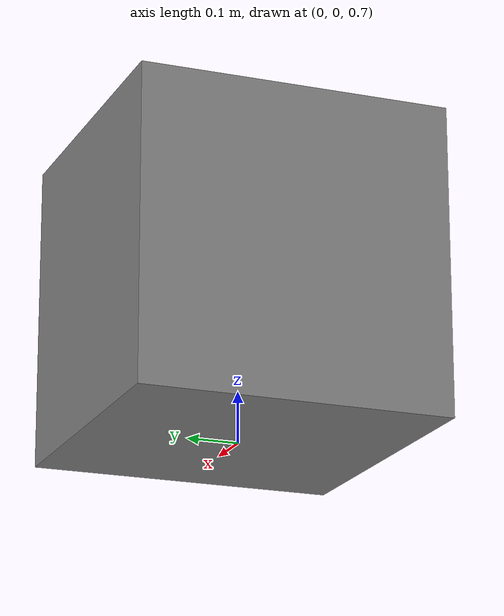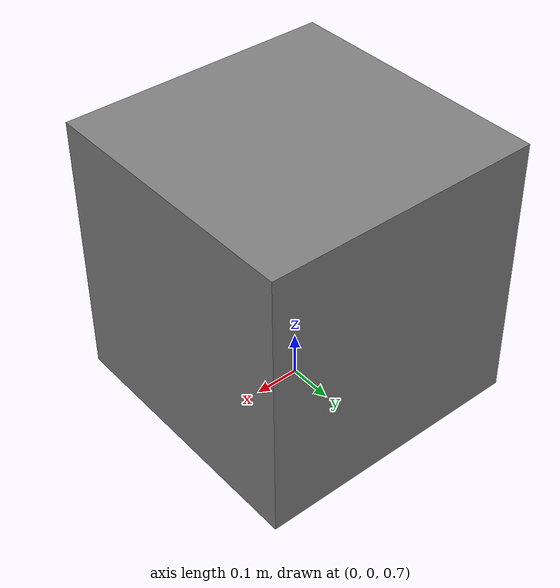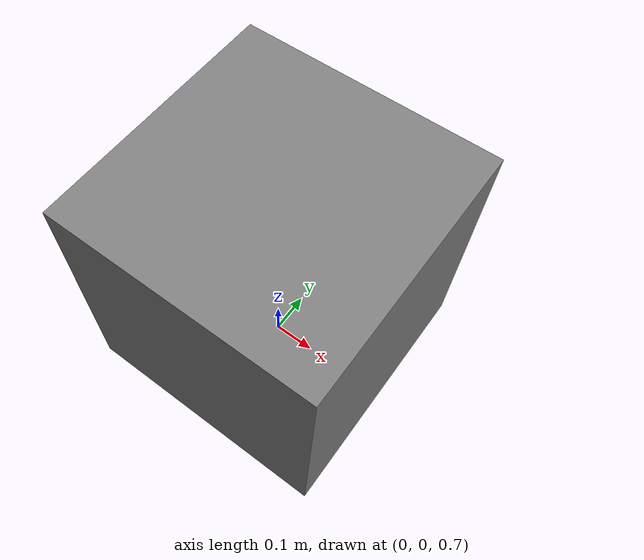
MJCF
<mujoco model="table">
    <asset>
        <texture file="../textures/light-wood.png" type="2d" name="tex-light-wood"/>
        <material name="light-wood" reflectance="0.5" texrepeat="20 20" texture="tex-light-wood" texuniform="true"/>
    </asset>

    <worldbody>
        <body name="table" pos="0 0 1">
            <freejoint></freejoint>
            <geom pos="0 0 0" size="0.3 0.3 0.3" type="box" name="table_collision" friction="1 0.005 0.0001"/>
            <geom pos="0 0 0" size="0.3 0.3 0.3" type="box" conaffinity="0" contype="0" group="1" name="table_visual"
                  material="light-wood"/>
        </body>

    </worldbody>
</mujoco>
